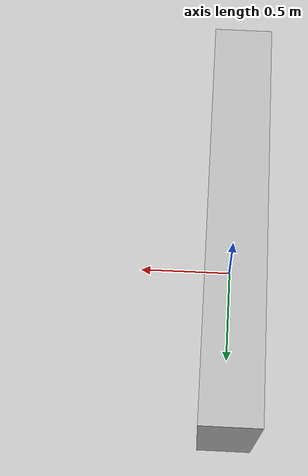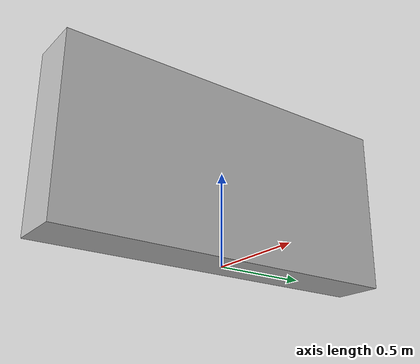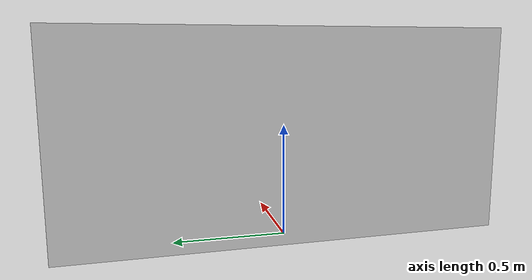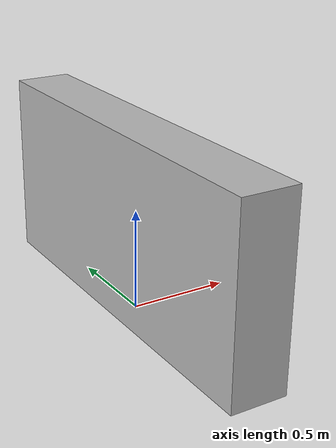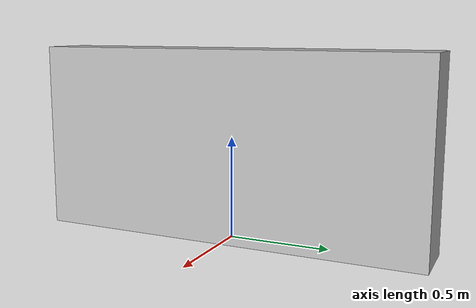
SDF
<?xml version="1.0" ?>
<sdf version="1.6">
  <model name="rwc2022/show_rack">
    <static>true</static>
    <link name="1_link">
      <collision name="1_col">
        <geometry>
          <box>
            <size>0.28 1.96 0.93</size>
          </box>
        </geometry>
      </collision>
      <visual name="1_vis">
        <geometry>
          <box>
            <size>0.28 1.96 0.93</size>
          </box>
        </geometry>
      </visual>
      <pose>0.0 0.0 0.465 0 0 0</pose>
    </link>
    <link name="on_top_of">
      <virtual_volume name="on_top_of_vv">
        <geometry>
          <box>
            <size>0.26 1.9 0.25</size>
          </box>
        </geometry>
        <pose>0.0 0.0 1.075 0 0 0</pose>
      </virtual_volume>
    </link>
    <link name="in_front_of">
      <virtual_volume name="in_front_of_vv">
        <geometry>
          <box>
            <size>0.2 0.88 0.01</size>
          </box>
        </geometry>
        <pose>0.64 0.0 0.005 0 0 0</pose>
      </virtual_volume>
    </link>
  </model>
</sdf>
